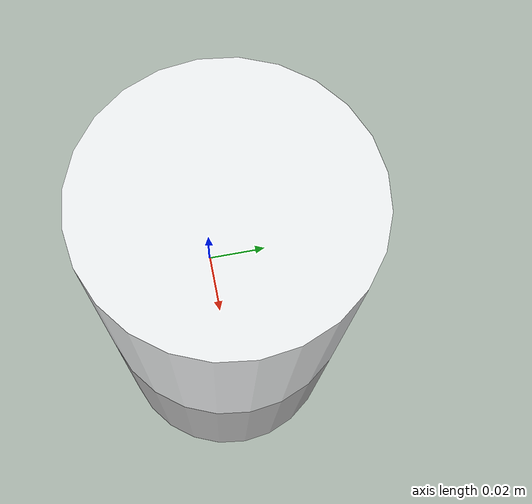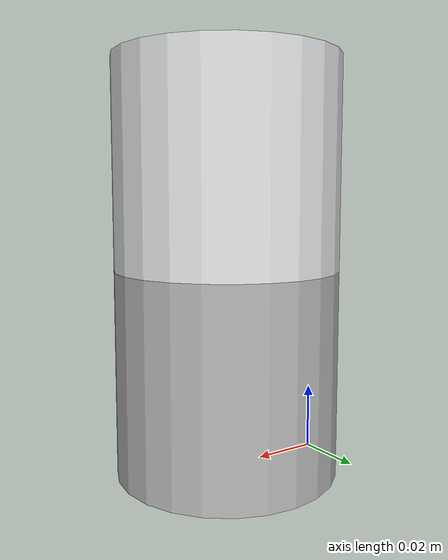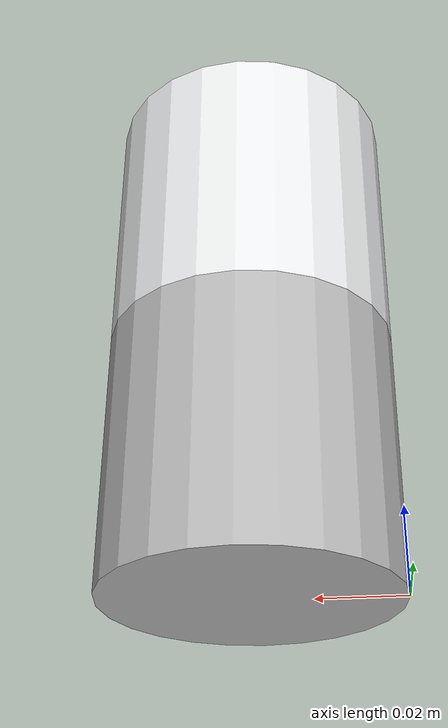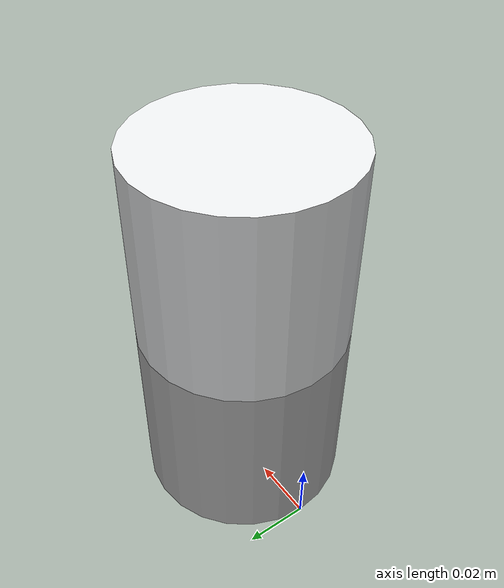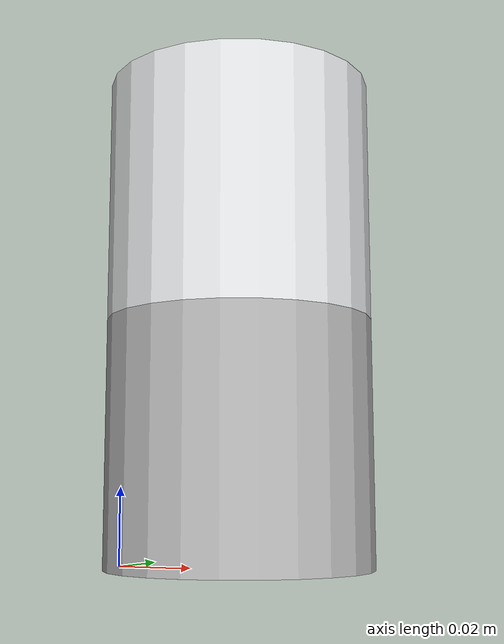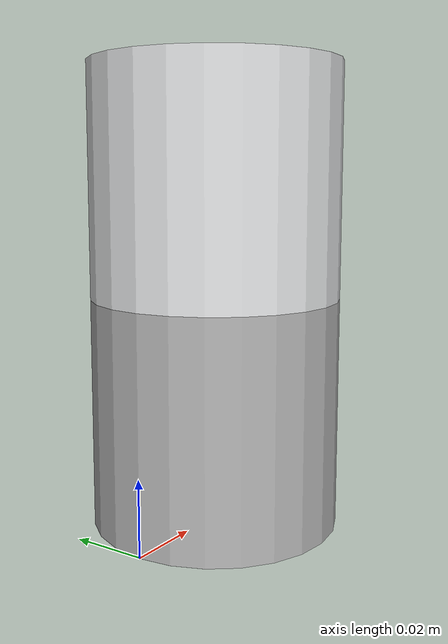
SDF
<?xml version='1.0'?>

<sdf version="1.5">
<model name="1can">
  <pose>0 0 0 0 0 0</pose>
     <link name="1st_can_upper">
        <pose>0.033 0 0.0915 0 0 0</pose>

        <collision name="collision">
          <geometry>
            <cylinder>
              <radius>0.033</radius>
              <length>0.061</length>
            </cylinder>
          </geometry>
        </collision>

        <visual name="visual">
          <geometry>
            <cylinder>
              <radius>0.033</radius>
              <length>0.061</length>
            </cylinder>
          </geometry>
          <material>
            <ambient>0.8 0.8 0.8 1</ambient>
            <diffuse>0.913 0.921 0.925 1</diffuse>
            <specular>1.0 1.0 1.0 0.8</specular>
            <emissive>0.0 0.0 0.0 1</emissive>
          </material>
        </visual>

      </link>

      <link name="1st_can_lower">
        <pose>0.033 0 0.0305 0 0 0</pose>

        <collision name="collision">
          <geometry>
            <cylinder>
              <radius>0.033</radius>
              <length>0.061</length>
            </cylinder>
          </geometry>
        </collision>

        <visual name="visual">
          <geometry>
            <cylinder>
              <radius>0.033</radius>
              <length>0.061</length>
            </cylinder>
          </geometry>
          <material>
            <script>
              <uri>model://1can/materials/scripts/tape.material</uri>
              <name>1can/Tape</name>
            </script>
          </material>
        </visual>

      </link>

  </model>
</sdf>
